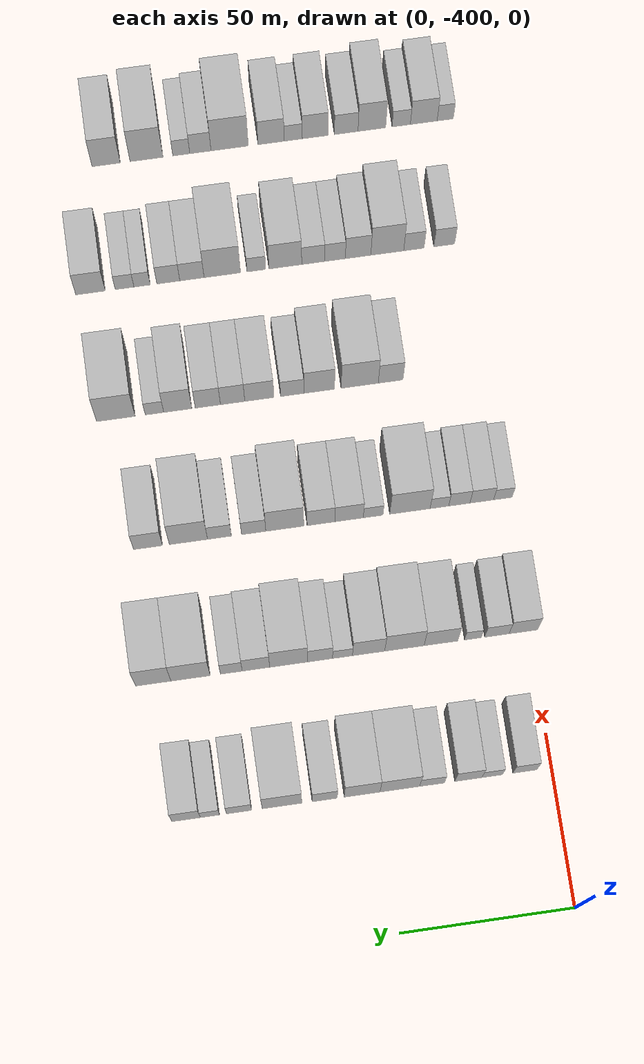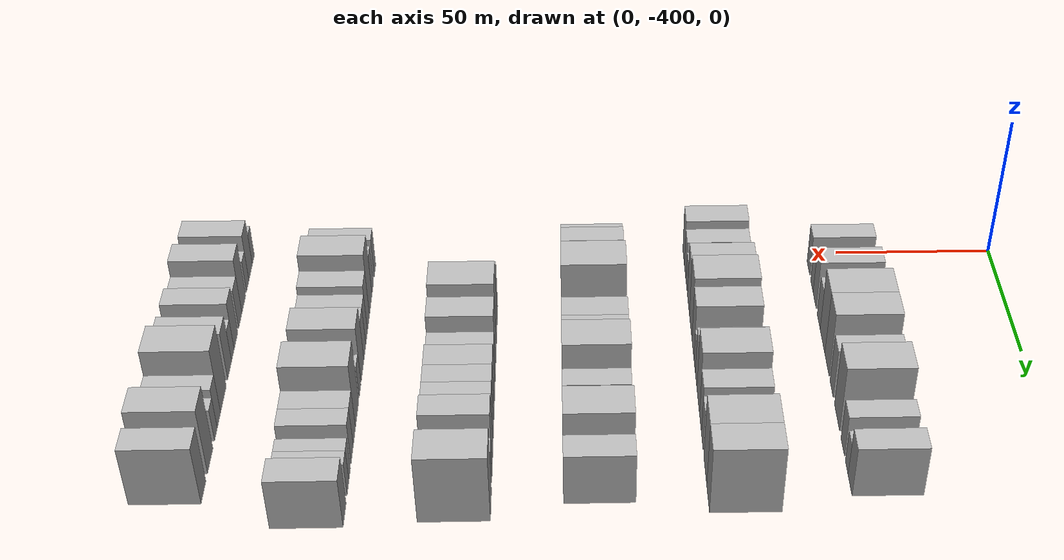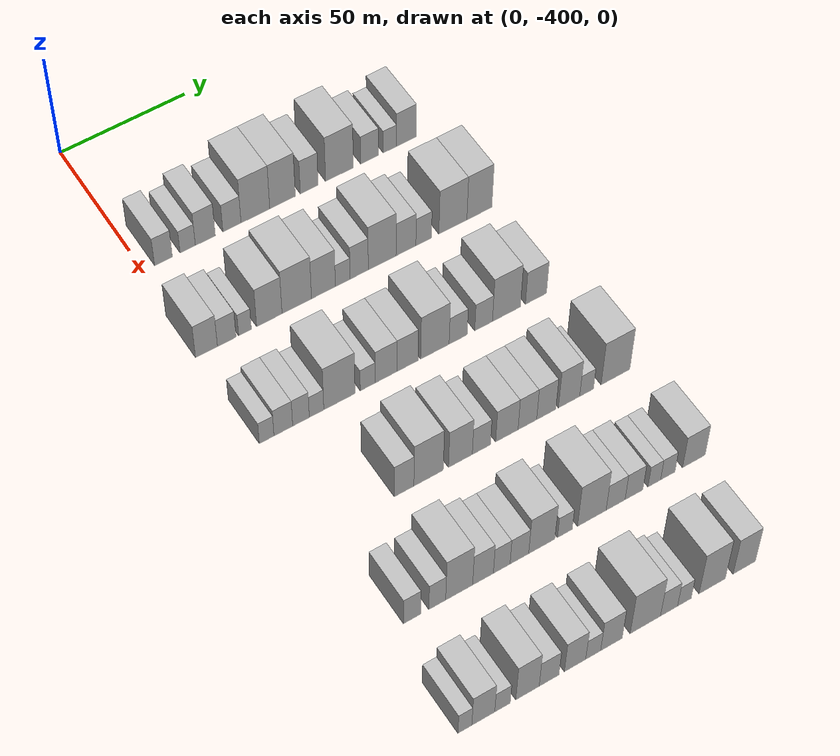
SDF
<sdf version="1.6">
 <world name="default">
  <model name="building_26">
   <static>1</static>
   <pose>50.0000 -392.2239 0 0.000000 0.000000 0.000000</pose>
   <link name="link">
    <pose>0 0 7.50 0 0 0</pose>
    <collision name="collision"><geometry><box><size>20.0000 6.9401 15.0000</size></box></geometry></collision>
    <visual name="visual">
     <cast_shadows>0</cast_shadows>
     <geometry><box><size>20.0000 6.9401 15.0000</size></box></geometry>
     <material>
      <script>
       <uri>model://HANNAS_wall/materials/scripts</uri>
       <uri>model://HANNAS_wall/materials/textures</uri>
       <name>vrc/HANNAS_wall</name>
      </script>
     </material>
    </visual>
   </link>
  </model>
  <model name="building_27">
   <static>1</static>
   <pose>50.0000 -382.7756 0 0.000000 0.000000 0.000000</pose>
   <link name="link">
    <pose>0 0 6.00 0 0 0</pose>
    <collision name="collision"><geometry><box><size>20.0000 5.9565 12.0000</size></box></geometry></collision>
    <visual name="visual">
     <cast_shadows>0</cast_shadows>
     <geometry><box><size>20.0000 5.9565 12.0000</size></box></geometry>
     <material>
      <script>
       <uri>model://HANNAS_wall/materials/scripts</uri>
       <uri>model://HANNAS_wall/materials/textures</uri>
       <name>vrc/HANNAS_wall</name>
      </script>
     </material>
    </visual>
   </link>
  </model>
  <model name="building_28">
   <static>1</static>
   <pose>50.0000 -375.8774 0 0.000000 0.000000 0.000000</pose>
   <link name="link">
    <pose>0 0 9.00 0 0 0</pose>
    <collision name="collision"><geometry><box><size>20.0000 7.8400 18.0000</size></box></geometry></collision>
    <visual name="visual">
     <cast_shadows>0</cast_shadows>
     <geometry><box><size>20.0000 7.8400 18.0000</size></box></geometry>
     <material>
      <script>
       <uri>model://HANNAS_wall/materials/scripts</uri>
       <uri>model://HANNAS_wall/materials/textures</uri>
       <name>vrc/HANNAS_wall</name>
      </script>
     </material>
    </visual>
   </link>
  </model>
  <model name="building_29">
   <static>1</static>
   <pose>50.0000 -365.3689 0 0.000000 0.000000 0.000000</pose>
   <link name="link">
    <pose>0 0 7.50 0 0 0</pose>
    <collision name="collision"><geometry><box><size>20.0000 7.1769 15.0000</size></box></geometry></collision>
    <visual name="visual">
     <cast_shadows>0</cast_shadows>
     <geometry><box><size>20.0000 7.1769 15.0000</size></box></geometry>
     <material>
      <script>
       <uri>model://HANNAS_wall/materials/scripts</uri>
       <uri>model://HANNAS_wall/materials/textures</uri>
       <name>vrc/HANNAS_wall</name>
      </script>
     </material>
    </visual>
   </link>
  </model>
  <model name="building_30">
   <static>1</static>
   <pose>50.0000 -356.0640 0 0.000000 0.000000 0.000000</pose>
   <link name="link">
    <pose>0 0 12.00 0 0 0</pose>
    <collision name="collision"><geometry><box><size>20.0000 11.4329 24.0000</size></box></geometry></collision>
    <visual name="visual">
     <cast_shadows>0</cast_shadows>
     <geometry><box><size>20.0000 11.4329 24.0000</size></box></geometry>
     <material>
      <script>
       <uri>model://HANNAS_wall/materials/scripts</uri>
       <uri>model://HANNAS_wall/materials/textures</uri>
       <name>vrc/HANNAS_wall</name>
      </script>
     </material>
    </visual>
   </link>
  </model>
  <model name="building_31">
   <static>1</static>
   <pose>50.0000 -345.2224 0 0.000000 0.000000 0.000000</pose>
   <link name="link">
    <pose>0 0 12.00 0 0 0</pose>
    <collision name="collision"><geometry><box><size>20.0000 10.2502 24.0000</size></box></geometry></collision>
    <visual name="visual">
     <cast_shadows>0</cast_shadows>
     <geometry><box><size>20.0000 10.2502 24.0000</size></box></geometry>
     <material>
      <script>
       <uri>model://HANNAS_wall/materials/scripts</uri>
       <uri>model://HANNAS_wall/materials/textures</uri>
       <name>vrc/HANNAS_wall</name>
      </script>
     </material>
    </visual>
   </link>
  </model>
  <model name="building_32">
   <static>1</static>
   <pose>50.0000 -334.4931 0 0.000000 0.000000 0.000000</pose>
   <link name="link">
    <pose>0 0 9.00 0 0 0</pose>
    <collision name="collision"><geometry><box><size>20.0000 7.2084 18.0000</size></box></geometry></collision>
    <visual name="visual">
     <cast_shadows>0</cast_shadows>
     <geometry><box><size>20.0000 7.2084 18.0000</size></box></geometry>
     <material>
      <script>
       <uri>model://HANNAS_wall/materials/scripts</uri>
       <uri>model://HANNAS_wall/materials/textures</uri>
       <name>vrc/HANNAS_wall</name>
      </script>
     </material>
    </visual>
   </link>
  </model>
  <model name="building_33">
   <static>1</static>
   <pose>50.0000 -322.2278 0 0.000000 0.000000 0.000000</pose>
   <link name="link">
    <pose>0 0 12.00 0 0 0</pose>
    <collision name="collision"><geometry><box><size>20.0000 11.3222 24.0000</size></box></geometry></collision>
    <visual name="visual">
     <cast_shadows>0</cast_shadows>
     <geometry><box><size>20.0000 11.3222 24.0000</size></box></geometry>
     <material>
      <script>
       <uri>model://HANNAS_wall/materials/scripts</uri>
       <uri>model://HANNAS_wall/materials/textures</uri>
       <name>vrc/HANNAS_wall</name>
      </script>
     </material>
    </visual>
   </link>
  </model>
  <model name="building_34">
   <static>1</static>
   <pose>50.0000 -309.9408 0 0.000000 0.000000 0.000000</pose>
   <link name="link">
    <pose>0 0 7.50 0 0 0</pose>
    <collision name="collision"><geometry><box><size>20.0000 7.2519 15.0000</size></box></geometry></collision>
    <visual name="visual">
     <cast_shadows>0</cast_shadows>
     <geometry><box><size>20.0000 7.2519 15.0000</size></box></geometry>
     <material>
      <script>
       <uri>model://HANNAS_wall/materials/scripts</uri>
       <uri>model://HANNAS_wall/materials/textures</uri>
       <name>vrc/HANNAS_wall</name>
      </script>
     </material>
    </visual>
   </link>
  </model>
  <model name="building_35">
   <static>1</static>
   <pose>50.0000 -301.5665 0 0.000000 0.000000 0.000000</pose>
   <link name="link">
    <pose>0 0 6.00 0 0 0</pose>
    <collision name="collision"><geometry><box><size>20.0000 5.4966 12.0000</size></box></geometry></collision>
    <visual name="visual">
     <cast_shadows>0</cast_shadows>
     <geometry><box><size>20.0000 5.4966 12.0000</size></box></geometry>
     <material>
      <script>
       <uri>model://HANNAS_wall/materials/scripts</uri>
       <uri>model://HANNAS_wall/materials/textures</uri>
       <name>vrc/HANNAS_wall</name>
      </script>
     </material>
    </visual>
   </link>
  </model>
  <model name="building_36">
   <static>1</static>
   <pose>50.0000 -294.7502 0 0.000000 0.000000 0.000000</pose>
   <link name="link">
    <pose>0 0 9.00 0 0 0</pose>
    <collision name="collision"><geometry><box><size>20.0000 8.1360 18.0000</size></box></geometry></collision>
    <visual name="visual">
     <cast_shadows>0</cast_shadows>
     <geometry><box><size>20.0000 8.1360 18.0000</size></box></geometry>
     <material>
      <script>
       <uri>model://HANNAS_wall/materials/scripts</uri>
       <uri>model://HANNAS_wall/materials/textures</uri>
       <name>vrc/HANNAS_wall</name>
      </script>
     </material>
    </visual>
   </link>
  </model>
  <model name="building_162">
   <static>1</static>
   <pose>90.0000 -398.2968 0 0.000000 0.000000 0.000000</pose>
   <link name="link">
    <pose>0 0 9.00 0 0 0</pose>
    <collision name="collision"><geometry><box><size>20.0000 8.3771 18.0000</size></box></geometry></collision>
    <visual name="visual">
     <cast_shadows>0</cast_shadows>
     <geometry><box><size>20.0000 8.3771 18.0000</size></box></geometry>
     <material>
      <script>
       <uri>model://HANNAS_wall/materials/scripts</uri>
       <uri>model://HANNAS_wall/materials/textures</uri>
       <name>vrc/HANNAS_wall</name>
      </script>
     </material>
    </visual>
   </link>
  </model>
  <model name="building_163">
   <static>1</static>
   <pose>90.0000 -390.5417 0 0.000000 0.000000 0.000000</pose>
   <link name="link">
    <pose>0 0 7.50 0 0 0</pose>
    <collision name="collision"><geometry><box><size>20.0000 7.1333 15.0000</size></box></geometry></collision>
    <visual name="visual">
     <cast_shadows>0</cast_shadows>
     <geometry><box><size>20.0000 7.1333 15.0000</size></box></geometry>
     <material>
      <script>
       <uri>model://HANNAS_wall/materials/scripts</uri>
       <uri>model://HANNAS_wall/materials/textures</uri>
       <name>vrc/HANNAS_wall</name>
      </script>
     </material>
    </visual>
   </link>
  </model>
  <model name="building_164">
   <static>1</static>
   <pose>90.0000 -383.5203 0 0.000000 0.000000 0.000000</pose>
   <link name="link">
    <pose>0 0 6.00 0 0 0</pose>
    <collision name="collision"><geometry><box><size>20.0000 4.9095 12.0000</size></box></geometry></collision>
    <visual name="visual">
     <cast_shadows>0</cast_shadows>
     <geometry><box><size>20.0000 4.9095 12.0000</size></box></geometry>
     <material>
      <script>
       <uri>model://HANNAS_wall/materials/scripts</uri>
       <uri>model://HANNAS_wall/materials/textures</uri>
       <name>vrc/HANNAS_wall</name>
      </script>
     </material>
    </visual>
   </link>
  </model>
  <model name="building_165">
   <static>1</static>
   <pose>90.0000 -374.1359 0 0.000000 0.000000 0.000000</pose>
   <link name="link">
    <pose>0 0 10.50 0 0 0</pose>
    <collision name="collision"><geometry><box><size>20.0000 9.8593 21.0000</size></box></geometry></collision>
    <visual name="visual">
     <cast_shadows>0</cast_shadows>
     <geometry><box><size>20.0000 9.8593 21.0000</size></box></geometry>
     <material>
      <script>
       <uri>model://HANNAS_wall/materials/scripts</uri>
       <uri>model://HANNAS_wall/materials/textures</uri>
       <name>vrc/HANNAS_wall</name>
      </script>
     </material>
    </visual>
   </link>
  </model>
  <model name="building_166">
   <static>1</static>
   <pose>90.0000 -363.4554 0 0.000000 0.000000 0.000000</pose>
   <link name="link">
    <pose>0 0 12.00 0 0 0</pose>
    <collision name="collision"><geometry><box><size>20.0000 11.5018 24.0000</size></box></geometry></collision>
    <visual name="visual">
     <cast_shadows>0</cast_shadows>
     <geometry><box><size>20.0000 11.5018 24.0000</size></box></geometry>
     <material>
      <script>
       <uri>model://HANNAS_wall/materials/scripts</uri>
       <uri>model://HANNAS_wall/materials/textures</uri>
       <name>vrc/HANNAS_wall</name>
      </script>
     </material>
    </visual>
   </link>
  </model>
  <model name="building_167">
   <static>1</static>
   <pose>90.0000 -353.0011 0 0.000000 0.000000 0.000000</pose>
   <link name="link">
    <pose>0 0 10.50 0 0 0</pose>
    <collision name="collision"><geometry><box><size>20.0000 9.4067 21.0000</size></box></geometry></collision>
    <visual name="visual">
     <cast_shadows>0</cast_shadows>
     <geometry><box><size>20.0000 9.4067 21.0000</size></box></geometry>
     <material>
      <script>
       <uri>model://HANNAS_wall/materials/scripts</uri>
       <uri>model://HANNAS_wall/materials/textures</uri>
       <name>vrc/HANNAS_wall</name>
      </script>
     </material>
    </visual>
   </link>
  </model>
  <model name="building_168">
   <static>1</static>
   <pose>90.0000 -345.3849 0 0.000000 0.000000 0.000000</pose>
   <link name="link">
    <pose>0 0 6.00 0 0 0</pose>
    <collision name="collision"><geometry><box><size>20.0000 5.8258 12.0000</size></box></geometry></collision>
    <visual name="visual">
     <cast_shadows>0</cast_shadows>
     <geometry><box><size>20.0000 5.8258 12.0000</size></box></geometry>
     <material>
      <script>
       <uri>model://HANNAS_wall/materials/scripts</uri>
       <uri>model://HANNAS_wall/materials/textures</uri>
       <name>vrc/HANNAS_wall</name>
      </script>
     </material>
    </visual>
   </link>
  </model>
  <model name="building_169">
   <static>1</static>
   <pose>90.0000 -338.8616 0 0.000000 0.000000 0.000000</pose>
   <link name="link">
    <pose>0 0 9.00 0 0 0</pose>
    <collision name="collision"><geometry><box><size>20.0000 7.2208 18.0000</size></box></geometry></collision>
    <visual name="visual">
     <cast_shadows>0</cast_shadows>
     <geometry><box><size>20.0000 7.2208 18.0000</size></box></geometry>
     <material>
      <script>
       <uri>model://HANNAS_wall/materials/scripts</uri>
       <uri>model://HANNAS_wall/materials/textures</uri>
       <name>vrc/HANNAS_wall</name>
      </script>
     </material>
    </visual>
   </link>
  </model>
  <model name="building_170">
   <static>1</static>
   <pose>90.0000 -329.7072 0 0.000000 0.000000 0.000000</pose>
   <link name="link">
    <pose>0 0 12.00 0 0 0</pose>
    <collision name="collision"><geometry><box><size>20.0000 11.0881 24.0000</size></box></geometry></collision>
    <visual name="visual">
     <cast_shadows>0</cast_shadows>
     <geometry><box><size>20.0000 11.0881 24.0000</size></box></geometry>
     <material>
      <script>
       <uri>model://HANNAS_wall/materials/scripts</uri>
       <uri>model://HANNAS_wall/materials/textures</uri>
       <name>vrc/HANNAS_wall</name>
      </script>
     </material>
    </visual>
   </link>
  </model>
  <model name="building_171">
   <static>1</static>
   <pose>90.0000 -320.1679 0 0.000000 0.000000 0.000000</pose>
   <link name="link">
    <pose>0 0 9.00 0 0 0</pose>
    <collision name="collision"><geometry><box><size>20.0000 7.9905 18.0000</size></box></geometry></collision>
    <visual name="visual">
     <cast_shadows>0</cast_shadows>
     <geometry><box><size>20.0000 7.9905 18.0000</size></box></geometry>
     <material>
      <script>
       <uri>model://HANNAS_wall/materials/scripts</uri>
       <uri>model://HANNAS_wall/materials/textures</uri>
       <name>vrc/HANNAS_wall</name>
      </script>
     </material>
    </visual>
   </link>
  </model>
  <model name="building_172">
   <static>1</static>
   <pose>90.0000 -313.0212 0 0.000000 0.000000 0.000000</pose>
   <link name="link">
    <pose>0 0 7.50 0 0 0</pose>
    <collision name="collision"><geometry><box><size>20.0000 6.3029 15.0000</size></box></geometry></collision>
    <visual name="visual">
     <cast_shadows>0</cast_shadows>
     <geometry><box><size>20.0000 6.3029 15.0000</size></box></geometry>
     <material>
      <script>
       <uri>model://HANNAS_wall/materials/scripts</uri>
       <uri>model://HANNAS_wall/materials/textures</uri>
       <name>vrc/HANNAS_wall</name>
      </script>
     </material>
    </visual>
   </link>
  </model>
  <model name="building_173">
   <static>1</static>
   <pose>90.0000 -301.1576 0 0.000000 0.000000 0.000000</pose>
   <link name="link">
    <pose>0 0 12.00 0 0 0</pose>
    <collision name="collision"><geometry><box><size>20.0000 11.4244 24.0000</size></box></geometry></collision>
    <visual name="visual">
     <cast_shadows>0</cast_shadows>
     <geometry><box><size>20.0000 11.4244 24.0000</size></box></geometry>
     <material>
      <script>
       <uri>model://HANNAS_wall/materials/scripts</uri>
       <uri>model://HANNAS_wall/materials/textures</uri>
       <name>vrc/HANNAS_wall</name>
      </script>
     </material>
    </visual>
   </link>
  </model>
  <model name="building_174">
   <static>1</static>
   <pose>90.0000 -290.3192 0 0.000000 0.000000 0.000000</pose>
   <link name="link">
    <pose>0 0 12.00 0 0 0</pose>
    <collision name="collision"><geometry><box><size>20.0000 10.2523 24.0000</size></box></geometry></collision>
    <visual name="visual">
     <cast_shadows>0</cast_shadows>
     <geometry><box><size>20.0000 10.2523 24.0000</size></box></geometry>
     <material>
      <script>
       <uri>model://HANNAS_wall/materials/scripts</uri>
       <uri>model://HANNAS_wall/materials/textures</uri>
       <name>vrc/HANNAS_wall</name>
      </script>
     </material>
    </visual>
   </link>
  </model>
  <model name="building_300">
   <static>1</static>
   <pose>130.0000 -398.7589 0 0.000000 0.000000 0.000000</pose>
   <link name="link">
    <pose>0 0 6.00 0 0 0</pose>
    <collision name="collision"><geometry><box><size>20.0000 5.5143 12.0000</size></box></geometry></collision>
    <visual name="visual">
     <cast_shadows>0</cast_shadows>
     <geometry><box><size>20.0000 5.5143 12.0000</size></box></geometry>
     <material>
      <script>
       <uri>model://HANNAS_wall/materials/scripts</uri>
       <uri>model://HANNAS_wall/materials/textures</uri>
       <name>vrc/HANNAS_wall</name>
      </script>
     </material>
    </visual>
   </link>
  </model>
  <model name="building_301">
   <static>1</static>
   <pose>130.0000 -392.4718 0 0.000000 0.000000 0.000000</pose>
   <link name="link">
    <pose>0 0 7.50 0 0 0</pose>
    <collision name="collision"><geometry><box><size>20.0000 7.0598 15.0000</size></box></geometry></collision>
    <visual name="visual">
     <cast_shadows>0</cast_shadows>
     <geometry><box><size>20.0000 7.0598 15.0000</size></box></geometry>
     <material>
      <script>
       <uri>model://HANNAS_wall/materials/scripts</uri>
       <uri>model://HANNAS_wall/materials/textures</uri>
       <name>vrc/HANNAS_wall</name>
      </script>
     </material>
    </visual>
   </link>
  </model>
  <model name="building_302">
   <static>1</static>
   <pose>130.0000 -385.7957 0 0.000000 0.000000 0.000000</pose>
   <link name="link">
    <pose>0 0 7.50 0 0 0</pose>
    <collision name="collision"><geometry><box><size>20.0000 6.2923 15.0000</size></box></geometry></collision>
    <visual name="visual">
     <cast_shadows>0</cast_shadows>
     <geometry><box><size>20.0000 6.2923 15.0000</size></box></geometry>
     <material>
      <script>
       <uri>model://HANNAS_wall/materials/scripts</uri>
       <uri>model://HANNAS_wall/materials/textures</uri>
       <name>vrc/HANNAS_wall</name>
      </script>
     </material>
    </visual>
   </link>
  </model>
  <model name="building_303">
   <static>1</static>
   <pose>130.0000 -379.8835 0 0.000000 0.000000 0.000000</pose>
   <link name="link">
    <pose>0 0 6.00 0 0 0</pose>
    <collision name="collision"><geometry><box><size>20.0000 5.5320 12.0000</size></box></geometry></collision>
    <visual name="visual">
     <cast_shadows>0</cast_shadows>
     <geometry><box><size>20.0000 5.5320 12.0000</size></box></geometry>
     <material>
      <script>
       <uri>model://HANNAS_wall/materials/scripts</uri>
       <uri>model://HANNAS_wall/materials/textures</uri>
       <name>vrc/HANNAS_wall</name>
      </script>
     </material>
    </visual>
   </link>
  </model>
  <model name="building_304">
   <static>1</static>
   <pose>130.0000 -371.1357 0 0.000000 0.000000 0.000000</pose>
   <link name="link">
    <pose>0 0 12.00 0 0 0</pose>
    <collision name="collision"><geometry><box><size>20.0000 11.9637 24.0000</size></box></geometry></collision>
    <visual name="visual">
     <cast_shadows>0</cast_shadows>
     <geometry><box><size>20.0000 11.9637 24.0000</size></box></geometry>
     <material>
      <script>
       <uri>model://HANNAS_wall/materials/scripts</uri>
       <uri>model://HANNAS_wall/materials/textures</uri>
       <name>vrc/HANNAS_wall</name>
      </script>
     </material>
    </visual>
   </link>
  </model>
  <model name="building_305">
   <static>1</static>
   <pose>130.0000 -360.2405 0 0.000000 0.000000 0.000000</pose>
   <link name="link">
    <pose>0 0 6.00 0 0 0</pose>
    <collision name="collision"><geometry><box><size>20.0000 5.8267 12.0000</size></box></geometry></collision>
    <visual name="visual">
     <cast_shadows>0</cast_shadows>
     <geometry><box><size>20.0000 5.8267 12.0000</size></box></geometry>
     <material>
      <script>
       <uri>model://HANNAS_wall/materials/scripts</uri>
       <uri>model://HANNAS_wall/materials/textures</uri>
       <name>vrc/HANNAS_wall</name>
      </script>
     </material>
    </visual>
   </link>
  </model>
  <model name="building_306">
   <static>1</static>
   <pose>130.0000 -353.1044 0 0.000000 0.000000 0.000000</pose>
   <link name="link">
    <pose>0 0 9.00 0 0 0</pose>
    <collision name="collision"><geometry><box><size>20.0000 8.4454 18.0000</size></box></geometry></collision>
    <visual name="visual">
     <cast_shadows>0</cast_shadows>
     <geometry><box><size>20.0000 8.4454 18.0000</size></box></geometry>
     <material>
      <script>
       <uri>model://HANNAS_wall/materials/scripts</uri>
       <uri>model://HANNAS_wall/materials/textures</uri>
       <name>vrc/HANNAS_wall</name>
      </script>
     </material>
    </visual>
   </link>
  </model>
  <model name="building_307">
   <static>1</static>
   <pose>130.0000 -344.7986 0 0.000000 0.000000 0.000000</pose>
   <link name="link">
    <pose>0 0 9.00 0 0 0</pose>
    <collision name="collision"><geometry><box><size>20.0000 8.1662 18.0000</size></box></geometry></collision>
    <visual name="visual">
     <cast_shadows>0</cast_shadows>
     <geometry><box><size>20.0000 8.1662 18.0000</size></box></geometry>
     <material>
      <script>
       <uri>model://HANNAS_wall/materials/scripts</uri>
       <uri>model://HANNAS_wall/materials/textures</uri>
       <name>vrc/HANNAS_wall</name>
      </script>
     </material>
    </visual>
   </link>
  </model>
  <model name="building_308">
   <static>1</static>
   <pose>130.0000 -334.1117 0 0.000000 0.000000 0.000000</pose>
   <link name="link">
    <pose>0 0 12.00 0 0 0</pose>
    <collision name="collision"><geometry><box><size>20.0000 11.2076 24.0000</size></box></geometry></collision>
    <visual name="visual">
     <cast_shadows>0</cast_shadows>
     <geometry><box><size>20.0000 11.2076 24.0000</size></box></geometry>
     <material>
      <script>
       <uri>model://HANNAS_wall/materials/scripts</uri>
       <uri>model://HANNAS_wall/materials/textures</uri>
       <name>vrc/HANNAS_wall</name>
      </script>
     </material>
    </visual>
   </link>
  </model>
  <model name="building_309">
   <static>1</static>
   <pose>130.0000 -324.9328 0 0.000000 0.000000 0.000000</pose>
   <link name="link">
    <pose>0 0 7.50 0 0 0</pose>
    <collision name="collision"><geometry><box><size>20.0000 7.1501 15.0000</size></box></geometry></collision>
    <visual name="visual">
     <cast_shadows>0</cast_shadows>
     <geometry><box><size>20.0000 7.1501 15.0000</size></box></geometry>
     <material>
      <script>
       <uri>model://HANNAS_wall/materials/scripts</uri>
       <uri>model://HANNAS_wall/materials/textures</uri>
       <name>vrc/HANNAS_wall</name>
      </script>
     </material>
    </visual>
   </link>
  </model>
  <model name="building_310">
   <static>1</static>
   <pose>130.0000 -314.8320 0 0.000000 0.000000 0.000000</pose>
   <link name="link">
    <pose>0 0 7.50 0 0 0</pose>
    <collision name="collision"><geometry><box><size>20.0000 7.0516 15.0000</size></box></geometry></collision>
    <visual name="visual">
     <cast_shadows>0</cast_shadows>
     <geometry><box><size>20.0000 7.0516 15.0000</size></box></geometry>
     <material>
      <script>
       <uri>model://HANNAS_wall/materials/scripts</uri>
       <uri>model://HANNAS_wall/materials/textures</uri>
       <name>vrc/HANNAS_wall</name>
      </script>
     </material>
    </visual>
   </link>
  </model>
  <model name="building_311">
   <static>1</static>
   <pose>130.0000 -305.6829 0 0.000000 0.000000 0.000000</pose>
   <link name="link">
    <pose>0 0 12.00 0 0 0</pose>
    <collision name="collision"><geometry><box><size>20.0000 11.2465 24.0000</size></box></geometry></collision>
    <visual name="visual">
     <cast_shadows>0</cast_shadows>
     <geometry><box><size>20.0000 11.2465 24.0000</size></box></geometry>
     <material>
      <script>
       <uri>model://HANNAS_wall/materials/scripts</uri>
       <uri>model://HANNAS_wall/materials/textures</uri>
       <name>vrc/HANNAS_wall</name>
      </script>
     </material>
    </visual>
   </link>
  </model>
  <model name="building_312">
   <static>1</static>
   <pose>130.0000 -293.7919 0 0.000000 0.000000 0.000000</pose>
   <link name="link">
    <pose>0 0 9.00 0 0 0</pose>
    <collision name="collision"><geometry><box><size>20.0000 8.5356 18.0000</size></box></geometry></collision>
    <visual name="visual">
     <cast_shadows>0</cast_shadows>
     <geometry><box><size>20.0000 8.5356 18.0000</size></box></geometry>
     <material>
      <script>
       <uri>model://HANNAS_wall/materials/scripts</uri>
       <uri>model://HANNAS_wall/materials/textures</uri>
       <name>vrc/HANNAS_wall</name>
      </script>
     </material>
    </visual>
   </link>
  </model>
  <model name="building_440">
   <static>1</static>
   <pose>170.0000 -371.4090 0 0.000000 0.000000 0.000000</pose>
   <link name="link">
    <pose>0 0 9.00 0 0 0</pose>
    <collision name="collision"><geometry><box><size>20.0000 7.4164 18.0000</size></box></geometry></collision>
    <visual name="visual">
     <cast_shadows>0</cast_shadows>
     <geometry><box><size>20.0000 7.4164 18.0000</size></box></geometry>
     <material>
      <script>
       <uri>model://HANNAS_wall/materials/scripts</uri>
       <uri>model://HANNAS_wall/materials/textures</uri>
       <name>vrc/HANNAS_wall</name>
      </script>
     </material>
    </visual>
   </link>
  </model>
  <model name="building_441">
   <static>1</static>
   <pose>170.0000 -362.1256 0 0.000000 0.000000 0.000000</pose>
   <link name="link">
    <pose>0 0 12.00 0 0 0</pose>
    <collision name="collision"><geometry><box><size>20.0000 11.1504 24.0000</size></box></geometry></collision>
    <visual name="visual">
     <cast_shadows>0</cast_shadows>
     <geometry><box><size>20.0000 11.1504 24.0000</size></box></geometry>
     <material>
      <script>
       <uri>model://HANNAS_wall/materials/scripts</uri>
       <uri>model://HANNAS_wall/materials/textures</uri>
       <name>vrc/HANNAS_wall</name>
      </script>
     </material>
    </visual>
   </link>
  </model>
  <model name="building_442">
   <static>1</static>
   <pose>170.0000 -349.9820 0 0.000000 0.000000 0.000000</pose>
   <link name="link">
    <pose>0 0 10.50 0 0 0</pose>
    <collision name="collision"><geometry><box><size>20.0000 9.1368 21.0000</size></box></geometry></collision>
    <visual name="visual">
     <cast_shadows>0</cast_shadows>
     <geometry><box><size>20.0000 9.1368 21.0000</size></box></geometry>
     <material>
      <script>
       <uri>model://HANNAS_wall/materials/scripts</uri>
       <uri>model://HANNAS_wall/materials/textures</uri>
       <name>vrc/HANNAS_wall</name>
      </script>
     </material>
    </visual>
   </link>
  </model>
  <model name="building_443">
   <static>1</static>
   <pose>170.0000 -341.9067 0 0.000000 0.000000 0.000000</pose>
   <link name="link">
    <pose>0 0 7.50 0 0 0</pose>
    <collision name="collision"><geometry><box><size>20.0000 7.0138 15.0000</size></box></geometry></collision>
    <visual name="visual">
     <cast_shadows>0</cast_shadows>
     <geometry><box><size>20.0000 7.0138 15.0000</size></box></geometry>
     <material>
      <script>
       <uri>model://HANNAS_wall/materials/scripts</uri>
       <uri>model://HANNAS_wall/materials/textures</uri>
       <name>vrc/HANNAS_wall</name>
      </script>
     </material>
    </visual>
   </link>
  </model>
  <model name="building_444">
   <static>1</static>
   <pose>170.0000 -332.0427 0 0.000000 0.000000 0.000000</pose>
   <link name="link">
    <pose>0 0 9.00 0 0 0</pose>
    <collision name="collision"><geometry><box><size>20.0000 8.7142 18.0000</size></box></geometry></collision>
    <visual name="visual">
     <cast_shadows>0</cast_shadows>
     <geometry><box><size>20.0000 8.7142 18.0000</size></box></geometry>
     <material>
      <script>
       <uri>model://HANNAS_wall/materials/scripts</uri>
       <uri>model://HANNAS_wall/materials/textures</uri>
       <name>vrc/HANNAS_wall</name>
      </script>
     </material>
    </visual>
   </link>
  </model>
  <model name="building_445">
   <static>1</static>
   <pose>170.0000 -324.0501 0 0.000000 0.000000 0.000000</pose>
   <link name="link">
    <pose>0 0 9.00 0 0 0</pose>
    <collision name="collision"><geometry><box><size>20.0000 7.2709 18.0000</size></box></geometry></collision>
    <visual name="visual">
     <cast_shadows>0</cast_shadows>
     <geometry><box><size>20.0000 7.2709 18.0000</size></box></geometry>
     <material>
      <script>
       <uri>model://HANNAS_wall/materials/scripts</uri>
       <uri>model://HANNAS_wall/materials/textures</uri>
       <name>vrc/HANNAS_wall</name>
      </script>
     </material>
    </visual>
   </link>
  </model>
  <model name="building_446">
   <static>1</static>
   <pose>170.0000 -316.6440 0 0.000000 0.000000 0.000000</pose>
   <link name="link">
    <pose>0 0 9.00 0 0 0</pose>
    <collision name="collision"><geometry><box><size>20.0000 7.5413 18.0000</size></box></geometry></collision>
    <visual name="visual">
     <cast_shadows>0</cast_shadows>
     <geometry><box><size>20.0000 7.5413 18.0000</size></box></geometry>
     <material>
      <script>
       <uri>model://HANNAS_wall/materials/scripts</uri>
       <uri>model://HANNAS_wall/materials/textures</uri>
       <name>vrc/HANNAS_wall</name>
      </script>
     </material>
    </visual>
   </link>
  </model>
  <model name="building_447">
   <static>1</static>
   <pose>170.0000 -307.6620 0 0.000000 0.000000 0.000000</pose>
   <link name="link">
    <pose>0 0 10.50 0 0 0</pose>
    <collision name="collision"><geometry><box><size>20.0000 8.4227 21.0000</size></box></geometry></collision>
    <visual name="visual">
     <cast_shadows>0</cast_shadows>
     <geometry><box><size>20.0000 8.4227 21.0000</size></box></geometry>
     <material>
      <script>
       <uri>model://HANNAS_wall/materials/scripts</uri>
       <uri>model://HANNAS_wall/materials/textures</uri>
       <name>vrc/HANNAS_wall</name>
      </script>
     </material>
    </visual>
   </link>
  </model>
  <model name="building_448">
   <static>1</static>
   <pose>170.0000 -300.6942 0 0.000000 0.000000 0.000000</pose>
   <link name="link">
    <pose>0 0 6.00 0 0 0</pose>
    <collision name="collision"><geometry><box><size>20.0000 5.5128 12.0000</size></box></geometry></collision>
    <visual name="visual">
     <cast_shadows>0</cast_shadows>
     <geometry><box><size>20.0000 5.5128 12.0000</size></box></geometry>
     <material>
      <script>
       <uri>model://HANNAS_wall/materials/scripts</uri>
       <uri>model://HANNAS_wall/materials/textures</uri>
       <name>vrc/HANNAS_wall</name>
      </script>
     </material>
    </visual>
   </link>
  </model>
  <model name="building_449">
   <static>1</static>
   <pose>170.0000 -289.1812 0 0.000000 0.000000 0.000000</pose>
   <link name="link">
    <pose>0 0 12.00 0 0 0</pose>
    <collision name="collision"><geometry><box><size>20.0000 11.5132 24.0000</size></box></geometry></collision>
    <visual name="visual">
     <cast_shadows>0</cast_shadows>
     <geometry><box><size>20.0000 11.5132 24.0000</size></box></geometry>
     <material>
      <script>
       <uri>model://HANNAS_wall/materials/scripts</uri>
       <uri>model://HANNAS_wall/materials/textures</uri>
       <name>vrc/HANNAS_wall</name>
      </script>
     </material>
    </visual>
   </link>
  </model>
  <model name="building_567">
   <static>1</static>
   <pose>210.0000 -393.7302 0 0.000000 0.000000 0.000000</pose>
   <link name="link">
    <pose>0 0 7.50 0 0 0</pose>
    <collision name="collision"><geometry><box><size>20.0000 6.3138 15.0000</size></box></geometry></collision>
    <visual name="visual">
     <cast_shadows>0</cast_shadows>
     <geometry><box><size>20.0000 6.3138 15.0000</size></box></geometry>
     <material>
      <script>
       <uri>model://HANNAS_wall/materials/scripts</uri>
       <uri>model://HANNAS_wall/materials/textures</uri>
       <name>vrc/HANNAS_wall</name>
      </script>
     </material>
    </visual>
   </link>
  </model>
  <model name="building_568">
   <static>1</static>
   <pose>210.0000 -384.4770 0 0.000000 0.000000 0.000000</pose>
   <link name="link">
    <pose>0 0 7.50 0 0 0</pose>
    <collision name="collision"><geometry><box><size>20.0000 6.1925 15.0000</size></box></geometry></collision>
    <visual name="visual">
     <cast_shadows>0</cast_shadows>
     <geometry><box><size>20.0000 6.1925 15.0000</size></box></geometry>
     <material>
      <script>
       <uri>model://HANNAS_wall/materials/scripts</uri>
       <uri>model://HANNAS_wall/materials/textures</uri>
       <name>vrc/HANNAS_wall</name>
      </script>
     </material>
    </visual>
   </link>
  </model>
  <model name="building_569">
   <static>1</static>
   <pose>210.0000 -376.3735 0 0.000000 0.000000 0.000000</pose>
   <link name="link">
    <pose>0 0 12.00 0 0 0</pose>
    <collision name="collision"><geometry><box><size>20.0000 10.0146 24.0000</size></box></geometry></collision>
    <visual name="visual">
     <cast_shadows>0</cast_shadows>
     <geometry><box><size>20.0000 10.0146 24.0000</size></box></geometry>
     <material>
      <script>
       <uri>model://HANNAS_wall/materials/scripts</uri>
       <uri>model://HANNAS_wall/materials/textures</uri>
       <name>vrc/HANNAS_wall</name>
      </script>
     </material>
    </visual>
   </link>
  </model>
  <model name="building_570">
   <static>1</static>
   <pose>210.0000 -367.4917 0 0.000000 0.000000 0.000000</pose>
   <link name="link">
    <pose>0 0 9.00 0 0 0</pose>
    <collision name="collision"><geometry><box><size>20.0000 7.7490 18.0000</size></box></geometry></collision>
    <visual name="visual">
     <cast_shadows>0</cast_shadows>
     <geometry><box><size>20.0000 7.7490 18.0000</size></box></geometry>
     <material>
      <script>
       <uri>model://HANNAS_wall/materials/scripts</uri>
       <uri>model://HANNAS_wall/materials/textures</uri>
       <name>vrc/HANNAS_wall</name>
      </script>
     </material>
    </visual>
   </link>
  </model>
  <model name="building_571">
   <static>1</static>
   <pose>210.0000 -360.4885 0 0.000000 0.000000 0.000000</pose>
   <link name="link">
    <pose>0 0 7.50 0 0 0</pose>
    <collision name="collision"><geometry><box><size>20.0000 6.2574 15.0000</size></box></geometry></collision>
    <visual name="visual">
     <cast_shadows>0</cast_shadows>
     <geometry><box><size>20.0000 6.2574 15.0000</size></box></geometry>
     <material>
      <script>
       <uri>model://HANNAS_wall/materials/scripts</uri>
       <uri>model://HANNAS_wall/materials/textures</uri>
       <name>vrc/HANNAS_wall</name>
      </script>
     </material>
    </visual>
   </link>
  </model>
  <model name="building_572">
   <static>1</static>
   <pose>210.0000 -353.8475 0 0.000000 0.000000 0.000000</pose>
   <link name="link">
    <pose>0 0 7.50 0 0 0</pose>
    <collision name="collision"><geometry><box><size>20.0000 7.0246 15.0000</size></box></geometry></collision>
    <visual name="visual">
     <cast_shadows>0</cast_shadows>
     <geometry><box><size>20.0000 7.0246 15.0000</size></box></geometry>
     <material>
      <script>
       <uri>model://HANNAS_wall/materials/scripts</uri>
       <uri>model://HANNAS_wall/materials/textures</uri>
       <name>vrc/HANNAS_wall</name>
      </script>
     </material>
    </visual>
   </link>
  </model>
  <model name="building_573">
   <static>1</static>
   <pose>210.0000 -345.3675 0 0.000000 0.000000 0.000000</pose>
   <link name="link">
    <pose>0 0 10.50 0 0 0</pose>
    <collision name="collision"><geometry><box><size>20.0000 9.9355 21.0000</size></box></geometry></collision>
    <visual name="visual">
     <cast_shadows>0</cast_shadows>
     <geometry><box><size>20.0000 9.9355 21.0000</size></box></geometry>
     <material>
      <script>
       <uri>model://HANNAS_wall/materials/scripts</uri>
       <uri>model://HANNAS_wall/materials/textures</uri>
       <name>vrc/HANNAS_wall</name>
      </script>
     </material>
    </visual>
   </link>
  </model>
  <model name="building_574">
   <static>1</static>
   <pose>210.0000 -336.5742 0 0.000000 0.000000 0.000000</pose>
   <link name="link">
    <pose>0 0 6.00 0 0 0</pose>
    <collision name="collision"><geometry><box><size>20.0000 5.6511 12.0000</size></box></geometry></collision>
    <visual name="visual">
     <cast_shadows>0</cast_shadows>
     <geometry><box><size>20.0000 5.6511 12.0000</size></box></geometry>
     <material>
      <script>
       <uri>model://HANNAS_wall/materials/scripts</uri>
       <uri>model://HANNAS_wall/materials/textures</uri>
       <name>vrc/HANNAS_wall</name>
      </script>
     </material>
    </visual>
   </link>
  </model>
  <model name="building_575">
   <static>1</static>
   <pose>210.0000 -326.2349 0 0.000000 0.000000 0.000000</pose>
   <link name="link">
    <pose>0 0 12.00 0 0 0</pose>
    <collision name="collision"><geometry><box><size>20.0000 11.0274 24.0000</size></box></geometry></collision>
    <visual name="visual">
     <cast_shadows>0</cast_shadows>
     <geometry><box><size>20.0000 11.0274 24.0000</size></box></geometry>
     <material>
      <script>
       <uri>model://HANNAS_wall/materials/scripts</uri>
       <uri>model://HANNAS_wall/materials/textures</uri>
       <name>vrc/HANNAS_wall</name>
      </script>
     </material>
    </visual>
   </link>
  </model>
  <model name="building_576">
   <static>1</static>
   <pose>210.0000 -317.0395 0 0.000000 0.000000 0.000000</pose>
   <link name="link">
    <pose>0 0 7.50 0 0 0</pose>
    <collision name="collision"><geometry><box><size>20.0000 7.3635 15.0000</size></box></geometry></collision>
    <visual name="visual">
     <cast_shadows>0</cast_shadows>
     <geometry><box><size>20.0000 7.3635 15.0000</size></box></geometry>
     <material>
      <script>
       <uri>model://HANNAS_wall/materials/scripts</uri>
       <uri>model://HANNAS_wall/materials/textures</uri>
       <name>vrc/HANNAS_wall</name>
      </script>
     </material>
    </visual>
   </link>
  </model>
  <model name="building_577">
   <static>1</static>
   <pose>210.0000 -309.8893 0 0.000000 0.000000 0.000000</pose>
   <link name="link">
    <pose>0 0 7.50 0 0 0</pose>
    <collision name="collision"><geometry><box><size>20.0000 6.9369 15.0000</size></box></geometry></collision>
    <visual name="visual">
     <cast_shadows>0</cast_shadows>
     <geometry><box><size>20.0000 6.9369 15.0000</size></box></geometry>
     <material>
      <script>
       <uri>model://HANNAS_wall/materials/scripts</uri>
       <uri>model://HANNAS_wall/materials/textures</uri>
       <name>vrc/HANNAS_wall</name>
      </script>
     </material>
    </visual>
   </link>
  </model>
  <model name="building_578">
   <static>1</static>
   <pose>210.0000 -301.9485 0 0.000000 0.000000 0.000000</pose>
   <link name="link">
    <pose>0 0 6.00 0 0 0</pose>
    <collision name="collision"><geometry><box><size>20.0000 4.9446 12.0000</size></box></geometry></collision>
    <visual name="visual">
     <cast_shadows>0</cast_shadows>
     <geometry><box><size>20.0000 4.9446 12.0000</size></box></geometry>
     <material>
      <script>
       <uri>model://HANNAS_wall/materials/scripts</uri>
       <uri>model://HANNAS_wall/materials/textures</uri>
       <name>vrc/HANNAS_wall</name>
      </script>
     </material>
    </visual>
   </link>
  </model>
  <model name="building_579">
   <static>1</static>
   <pose>210.0000 -296.6587 0 0.000000 0.000000 0.000000</pose>
   <link name="link">
    <pose>0 0 6.00 0 0 0</pose>
    <collision name="collision"><geometry><box><size>20.0000 5.6351 12.0000</size></box></geometry></collision>
    <visual name="visual">
     <cast_shadows>0</cast_shadows>
     <geometry><box><size>20.0000 5.6351 12.0000</size></box></geometry>
     <material>
      <script>
       <uri>model://HANNAS_wall/materials/scripts</uri>
       <uri>model://HANNAS_wall/materials/textures</uri>
       <name>vrc/HANNAS_wall</name>
      </script>
     </material>
    </visual>
   </link>
  </model>
  <model name="building_580">
   <static>1</static>
   <pose>210.0000 -286.3730 0 0.000000 0.000000 0.000000</pose>
   <link name="link">
    <pose>0 0 9.00 0 0 0</pose>
    <collision name="collision"><geometry><box><size>20.0000 8.9364 18.0000</size></box></geometry></collision>
    <visual name="visual">
     <cast_shadows>0</cast_shadows>
     <geometry><box><size>20.0000 8.9364 18.0000</size></box></geometry>
     <material>
      <script>
       <uri>model://HANNAS_wall/materials/scripts</uri>
       <uri>model://HANNAS_wall/materials/textures</uri>
       <name>vrc/HANNAS_wall</name>
      </script>
     </material>
    </visual>
   </link>
  </model>
  <model name="building_711">
   <static>1</static>
   <pose>250.0000 -400.2389 0 0.000000 0.000000 0.000000</pose>
   <link name="link">
    <pose>0 0 6.00 0 0 0</pose>
    <collision name="collision"><geometry><box><size>20.0000 4.9872 12.0000</size></box></geometry></collision>
    <visual name="visual">
     <cast_shadows>0</cast_shadows>
     <geometry><box><size>20.0000 4.9872 12.0000</size></box></geometry>
     <material>
      <script>
       <uri>model://HANNAS_wall/materials/scripts</uri>
       <uri>model://HANNAS_wall/materials/textures</uri>
       <name>vrc/HANNAS_wall</name>
      </script>
     </material>
    </visual>
   </link>
  </model>
  <model name="building_712">
   <static>1</static>
   <pose>250.0000 -393.6101 0 0.000000 0.000000 0.000000</pose>
   <link name="link">
    <pose>0 0 9.00 0 0 0</pose>
    <collision name="collision"><geometry><box><size>20.0000 8.2706 18.0000</size></box></geometry></collision>
    <visual name="visual">
     <cast_shadows>0</cast_shadows>
     <geometry><box><size>20.0000 8.2706 18.0000</size></box></geometry>
     <material>
      <script>
       <uri>model://HANNAS_wall/materials/scripts</uri>
       <uri>model://HANNAS_wall/materials/textures</uri>
       <name>vrc/HANNAS_wall</name>
      </script>
     </material>
    </visual>
   </link>
  </model>
  <model name="building_713">
   <static>1</static>
   <pose>250.0000 -386.6590 0 0.000000 0.000000 0.000000</pose>
   <link name="link">
    <pose>0 0 6.00 0 0 0</pose>
    <collision name="collision"><geometry><box><size>20.0000 5.6316 12.0000</size></box></geometry></collision>
    <visual name="visual">
     <cast_shadows>0</cast_shadows>
     <geometry><box><size>20.0000 5.6316 12.0000</size></box></geometry>
     <material>
      <script>
       <uri>model://HANNAS_wall/materials/scripts</uri>
       <uri>model://HANNAS_wall/materials/textures</uri>
       <name>vrc/HANNAS_wall</name>
      </script>
     </material>
    </visual>
   </link>
  </model>
  <model name="building_714">
   <static>1</static>
   <pose>250.0000 -377.5697 0 0.000000 0.000000 0.000000</pose>
   <link name="link">
    <pose>0 0 10.50 0 0 0</pose>
    <collision name="collision"><geometry><box><size>20.0000 8.5470 21.0000</size></box></geometry></collision>
    <visual name="visual">
     <cast_shadows>0</cast_shadows>
     <geometry><box><size>20.0000 8.5470 21.0000</size></box></geometry>
     <material>
      <script>
       <uri>model://HANNAS_wall/materials/scripts</uri>
       <uri>model://HANNAS_wall/materials/textures</uri>
       <name>vrc/HANNAS_wall</name>
      </script>
     </material>
    </visual>
   </link>
  </model>
  <model name="building_715">
   <static>1</static>
   <pose>250.0000 -369.6638 0 0.000000 0.000000 0.000000</pose>
   <link name="link">
    <pose>0 0 7.50 0 0 0</pose>
    <collision name="collision"><geometry><box><size>20.0000 7.2647 15.0000</size></box></geometry></collision>
    <visual name="visual">
     <cast_shadows>0</cast_shadows>
     <geometry><box><size>20.0000 7.2647 15.0000</size></box></geometry>
     <material>
      <script>
       <uri>model://HANNAS_wall/materials/scripts</uri>
       <uri>model://HANNAS_wall/materials/textures</uri>
       <name>vrc/HANNAS_wall</name>
      </script>
     </material>
    </visual>
   </link>
  </model>
  <model name="building_716">
   <static>1</static>
   <pose>250.0000 -360.0837 0 0.000000 0.000000 0.000000</pose>
   <link name="link">
    <pose>0 0 9.00 0 0 0</pose>
    <collision name="collision"><geometry><box><size>20.0000 7.8956 18.0000</size></box></geometry></collision>
    <visual name="visual">
     <cast_shadows>0</cast_shadows>
     <geometry><box><size>20.0000 7.8956 18.0000</size></box></geometry>
     <material>
      <script>
       <uri>model://HANNAS_wall/materials/scripts</uri>
       <uri>model://HANNAS_wall/materials/textures</uri>
       <name>vrc/HANNAS_wall</name>
      </script>
     </material>
    </visual>
   </link>
  </model>
  <model name="building_717">
   <static>1</static>
   <pose>250.0000 -353.3540 0 0.000000 0.000000 0.000000</pose>
   <link name="link">
    <pose>0 0 6.00 0 0 0</pose>
    <collision name="collision"><geometry><box><size>20.0000 5.5639 12.0000</size></box></geometry></collision>
    <visual name="visual">
     <cast_shadows>0</cast_shadows>
     <geometry><box><size>20.0000 5.5639 12.0000</size></box></geometry>
     <material>
      <script>
       <uri>model://HANNAS_wall/materials/scripts</uri>
       <uri>model://HANNAS_wall/materials/textures</uri>
       <name>vrc/HANNAS_wall</name>
      </script>
     </material>
    </visual>
   </link>
  </model>
  <model name="building_718">
   <static>1</static>
   <pose>250.0000 -346.5408 0 0.000000 0.000000 0.000000</pose>
   <link name="link">
    <pose>0 0 9.00 0 0 0</pose>
    <collision name="collision"><geometry><box><size>20.0000 8.0624 18.0000</size></box></geometry></collision>
    <visual name="visual">
     <cast_shadows>0</cast_shadows>
     <geometry><box><size>20.0000 8.0624 18.0000</size></box></geometry>
     <material>
      <script>
       <uri>model://HANNAS_wall/materials/scripts</uri>
       <uri>model://HANNAS_wall/materials/textures</uri>
       <name>vrc/HANNAS_wall</name>
      </script>
     </material>
    </visual>
   </link>
  </model>
  <model name="building_719">
   <static>1</static>
   <pose>250.0000 -333.7802 0 0.000000 0.000000 0.000000</pose>
   <link name="link">
    <pose>0 0 12.00 0 0 0</pose>
    <collision name="collision"><geometry><box><size>20.0000 11.4589 24.0000</size></box></geometry></collision>
    <visual name="visual">
     <cast_shadows>0</cast_shadows>
     <geometry><box><size>20.0000 11.4589 24.0000</size></box></geometry>
     <material>
      <script>
       <uri>model://HANNAS_wall/materials/scripts</uri>
       <uri>model://HANNAS_wall/materials/textures</uri>
       <name>vrc/HANNAS_wall</name>
      </script>
     </material>
    </visual>
   </link>
  </model>
  <model name="building_720">
   <static>1</static>
   <pose>250.0000 -324.7959 0 0.000000 0.000000 0.000000</pose>
   <link name="link">
    <pose>0 0 7.50 0 0 0</pose>
    <collision name="collision"><geometry><box><size>20.0000 6.5098 15.0000</size></box></geometry></collision>
    <visual name="visual">
     <cast_shadows>0</cast_shadows>
     <geometry><box><size>20.0000 6.5098 15.0000</size></box></geometry>
     <material>
      <script>
       <uri>model://HANNAS_wall/materials/scripts</uri>
       <uri>model://HANNAS_wall/materials/textures</uri>
       <name>vrc/HANNAS_wall</name>
      </script>
     </material>
    </visual>
   </link>
  </model>
  <model name="building_721">
   <static>1</static>
   <pose>250.0000 -318.9379 0 0.000000 0.000000 0.000000</pose>
   <link name="link">
    <pose>0 0 6.00 0 0 0</pose>
    <collision name="collision"><geometry><box><size>20.0000 5.2060 12.0000</size></box></geometry></collision>
    <visual name="visual">
     <cast_shadows>0</cast_shadows>
     <geometry><box><size>20.0000 5.2060 12.0000</size></box></geometry>
     <material>
      <script>
       <uri>model://HANNAS_wall/materials/scripts</uri>
       <uri>model://HANNAS_wall/materials/textures</uri>
       <name>vrc/HANNAS_wall</name>
      </script>
     </material>
    </visual>
   </link>
  </model>
  <model name="building_722">
   <static>1</static>
   <pose>250.0000 -308.2800 0 0.000000 0.000000 0.000000</pose>
   <link name="link">
    <pose>0 0 12.00 0 0 0</pose>
    <collision name="collision"><geometry><box><size>20.0000 10.1099 24.0000</size></box></geometry></collision>
    <visual name="visual">
     <cast_shadows>0</cast_shadows>
     <geometry><box><size>20.0000 10.1099 24.0000</size></box></geometry>
     <material>
      <script>
       <uri>model://HANNAS_wall/materials/scripts</uri>
       <uri>model://HANNAS_wall/materials/textures</uri>
       <name>vrc/HANNAS_wall</name>
      </script>
     </material>
    </visual>
   </link>
  </model>
  <model name="building_723">
   <static>1</static>
   <pose>250.0000 -295.8930 0 0.000000 0.000000 0.000000</pose>
   <link name="link">
    <pose>0 0 10.50 0 0 0</pose>
    <collision name="collision"><geometry><box><size>20.0000 8.6641 21.0000</size></box></geometry></collision>
    <visual name="visual">
     <cast_shadows>0</cast_shadows>
     <geometry><box><size>20.0000 8.6641 21.0000</size></box></geometry>
     <material>
      <script>
       <uri>model://HANNAS_wall/materials/scripts</uri>
       <uri>model://HANNAS_wall/materials/textures</uri>
       <name>vrc/HANNAS_wall</name>
      </script>
     </material>
    </visual>
   </link>
  </model>
 </world>
</sdf>
